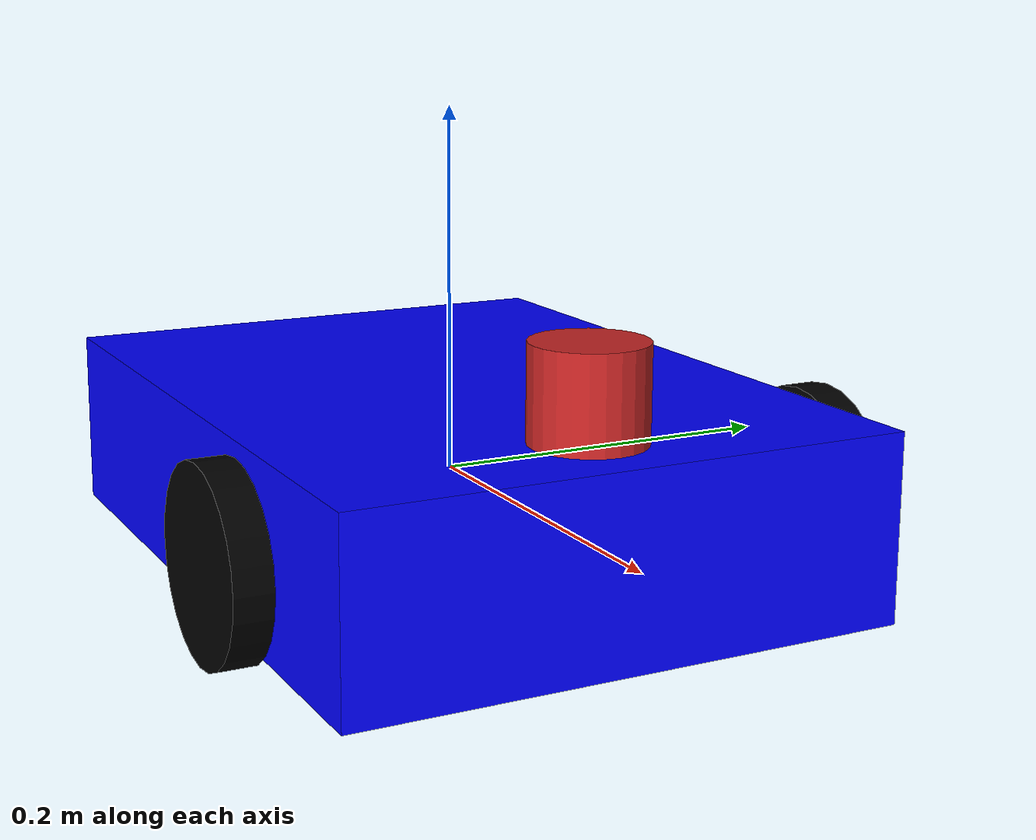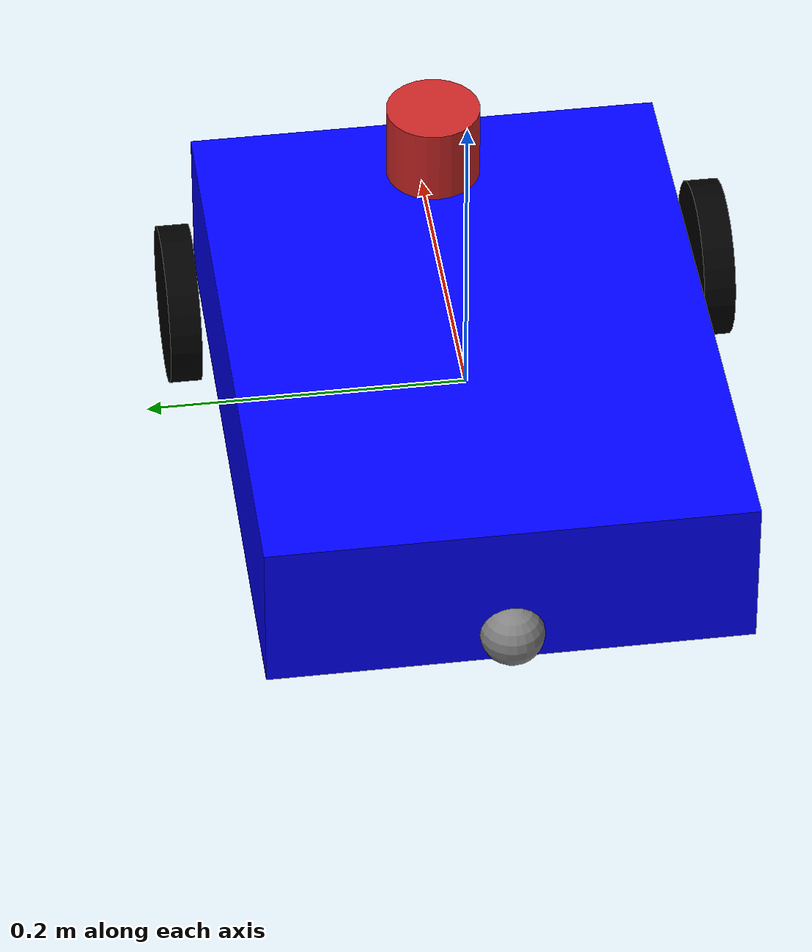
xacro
<?xml version="1.0"?>
<robot xmlns:xacro="http://www.ros.org/wiki/xacro">

  <xacro:property name="M_PI" value="3.1415926535897931" />
  <xacro:property name="base_x_size" value="0.4" />
  <xacro:property name="base_y_size" value="0.3" />
  <xacro:property name="base_z_size" value="0.1" />
  <xacro:property name="wheel_radius" value="0.05" />
  <xacro:property name="wheel_width" value="0.02" />
  <xacro:property name="wheel_offset_x" value="0.1" />
  <xacro:property name="wheel_offset_y" value="0.17" />
  <xacro:property name="caster_radius" value="0.02" />

  <!-- Chassis / Base Link -->
  <link name="base_link">
    <visual>
      <origin xyz="0 0 0" rpy="0 0 0"/>
      <geometry>
        <box size="${base_x_size} ${base_y_size} ${base_z_size}" />
      </geometry>
      <material name="blue">
        <color rgba="0 0 1 1"/>
      </material>
    </visual>
    <collision>
      <origin xyz="0 0 0" rpy="0 0 0"/>
      <geometry>
        <box size="${base_x_size} ${base_y_size} ${base_z_size}" />
      </geometry>
    </collision>
    <inertial>
      <origin xyz="0 0 0" rpy="0 0 0"/>
      <mass value="10.0"/>
      <inertia ixx="0.1" ixy="0.0" ixz="0.0" iyy="0.1" iyz="0.0" izz="0.1"/>
    </inertial>
  </link>

  <!-- Left Wheel Link -->
  <link name="left_wheel_link">
    <visual>
      <origin xyz="0 0 0" rpy="${M_PI/2} 0 0"/>
      <geometry>
        <cylinder radius="${wheel_radius}" length="${wheel_width}" />
      </geometry>
      <material name="black">
        <color rgba="0 0 0 1"/>
      </material>
    </visual>
    <collision>
      <origin xyz="0 0 0" rpy="${M_PI/2} 0 0"/>
      <geometry>
        <cylinder radius="${wheel_radius}" length="${wheel_width}" />
      </geometry>
    </collision>
    <inertial>
      <origin xyz="0 0 0" rpy="0 0 0"/>
      <mass value="0.5"/>
      <inertia ixx="0.001" ixy="0.0" ixz="0.0" iyy="0.001" iyz="0.0" izz="0.001"/>
    </inertial>
  </link>

  <!-- Right Wheel Link -->
  <link name="right_wheel_link">
    <visual>
      <origin xyz="0 0 0" rpy="${M_PI/2} 0 0"/>
      <geometry>
        <cylinder radius="${wheel_radius}" length="${wheel_width}" />
      </geometry>
      <material name="black"/>
    </visual>
    <collision>
      <origin xyz="0 0 0" rpy="${M_PI/2} 0 0"/>
      <geometry>
        <cylinder radius="${wheel_radius}" length="${wheel_width}" />
      </geometry>
    </collision>
    <inertial>
      <origin xyz="0 0 0" rpy="0 0 0"/>
      <mass value="0.5"/>
      <inertia ixx="0.001" ixy="0.0" ixz="0.0" iyy="0.001" iyz="0.0" izz="0.001"/>
    </inertial>
  </link>

  <!-- Caster Wheel Link -->
  <link name="caster_link">
    <visual>
      <origin xyz="0 0 0" rpy="0 0 0"/>
      <geometry>
        <sphere radius="${caster_radius}" />
      </geometry>
      <material name="grey">
        <color rgba="0.5 0.5 0.5 1"/>
      </material>
    </visual>
    <collision>
      <origin xyz="0 0 0" rpy="0 0 0"/>
      <geometry>
        <sphere radius="${caster_radius}" />
      </geometry>
    </collision>
    <inertial>
      <origin xyz="0 0 0" rpy="0 0 0"/>
      <mass value="0.1"/>
      <inertia ixx="0.0001" ixy="0.0" ixz="0.0" iyy="0.0001" iyz="0.0" izz="0.0001"/>
    </inertial>
  </link>

  <!-- Joints -->
  <joint name="left_wheel_joint" type="continuous">
    <parent link="base_link"/>
    <child link="left_wheel_link"/>
    <origin xyz="${wheel_offset_x} ${wheel_offset_y} ${wheel_radius - base_z_size/2}" rpy="0 0 0"/>
    <axis xyz="0 1 0"/>
  </joint>

  <joint name="right_wheel_joint" type="continuous">
    <parent link="base_link"/>
    <child link="right_wheel_link"/>
    <origin xyz="${wheel_offset_x} -${wheel_offset_y} ${wheel_radius - base_z_size/2}" rpy="0 0 0"/>
    <axis xyz="0 1 0"/>
  </joint>

  <joint name="caster_joint" type="fixed">
    <parent link="base_link"/>
    <child link="caster_link"/>
    <origin xyz="-${base_x_size/2} 0 ${caster_radius - base_z_size/2}" rpy="0 0 0"/>
  </joint>

  <!-- Gazebo specific settings for the mobile base -->
  <gazebo reference="base_link">
    <material>Gazebo/Blue</material>
  </gazebo>
  <gazebo reference="left_wheel_link">
    <material>Gazebo/Black</material>
  </gazebo>
  <gazebo reference="right_wheel_link">
    <material>Gazebo/Black</material>
  </gazebo>
  <gazebo reference="caster_link">
    <material>Gazebo/Grey</material>
  </gazebo>

  <!-- Differential drive plugin -->
  <gazebo>
    <plugin name="differential_drive_controller" filename="libros2_gazebo_diff_drive_plugin.so">
      <ros>                   <!-- ROS 2 specific configuration -->
        <namespace>diff_drive</namespace>
        <interface_name>cmd_vel</interface_name>
      </ros>
      <left_joint>left_wheel_joint</left_joint>
      <right_joint>right_wheel_joint</right_joint>
      <wheel_separation>${2*wheel_offset_y}</wheel_separation>
      <wheel_radius>${wheel_radius}</wheel_radius>
      <wheel_torque>200</wheel_torque>
      <publish_wheel_tf>true</publish_wheel_tf>
      <publish_odom>true</publish_odom>
      <publish_wheel_joint_state>true</publish_wheel_joint_state>
      <odometry_frame>odom</odometry_frame>
      <robot_base_frame>base_link</robot_base_frame>
    </plugin>
  </gazebo>

  <!-- Transmission for differential drive -->
  <transmission name="left_wheel_transmission">
    <type>actuator_transmission/SimpleTransmission</type>
    <joint name="left_wheel_joint">
      <hardwareInterface>hardware_interface/VelocityJointInterface</hardwareInterface>
    </joint>
    <actuator name="left_wheel_motor">
      <hardwareInterface>hardware_interface/VelocityJointInterface</hardwareInterface>
      <mechanicalReduction>1</mechanicalReduction>
    </actuator>
  </transmission>

  <transmission name="right_wheel_transmission">
    <type>actuator_transmission/SimpleTransmission</type>
    <joint name="right_wheel_joint">
      <hardwareInterface>hardware_interface/VelocityJointInterface</hardwareInterface>
    </joint>
    <actuator name="right_wheel_motor">
      <hardwareInterface>hardware_interface/VelocityJointInterface</hardwareInterface>
      <mechanicalReduction>1</mechanicalReduction>
    </actuator>
  </transmission>

  <!-- Example LIDAR sensor -->
  <link name="lidar_link">
    <visual>
      <origin xyz="0 0 0" rpy="0 0 0"/>
      <geometry>
        <cylinder radius="0.03" length="0.05"/>
      </geometry>
      <material name="red"/>
    </visual>
    <collision>
      <origin xyz="0 0 0" rpy="0 0 0"/>
      <geometry>
        <cylinder radius="0.03" length="0.05"/>
      </geometry>
    </collision>
    <inertial>
      <origin xyz="0 0 0" rpy="0 0 0"/>
      <mass value="0.1"/>
      <inertia ixx="0.0001" ixy="0.0" ixz="0.0" iyy="0.0001" iyz="0.0" izz="0.0001"/>
    </inertial>
  </link>

  <joint name="lidar_joint" type="fixed">
    <parent link="base_link"/>
    <child link="lidar_link"/>
    <origin xyz="0.15 0 0.075" rpy="0 0 0"/>
  </joint>

  <gazebo reference="lidar_link">
    <material>Gazebo/Red</material>
    <sensor name="lidar_sensor" type="ray">
      <pose>0 0 0 0 0 0</pose>
      <visualize>false</visualize>
      <update_rate>10</update_rate>
      <ray>
        <scan>
          <horizontal>
            <samples>360</samples>
            <resolution>1</resolution>
            <min_angle>-${M_PI}</min_angle>
            <max_angle>${M_PI}</max_angle>
          </horizontal>
        </scan>
        <range>
          <min>0.1</min>
          <max>10.0</max>
          <resolution>0.01</resolution>
        </range>
      </ray>
      <plugin name="gazebo_ros_laser_controller" filename="libgazebo_ros_ray_sensor.so">
        <ros>
          <namespace>/scan</namespace>
          <output_type>sensor_msgs/LaserScan</output_type>
          <frame_id>lidar_link</frame_id>
        </ros>
        <topic_name>scan</topic_name>
      </plugin>
    </sensor>
  </gazebo>

</robot>
